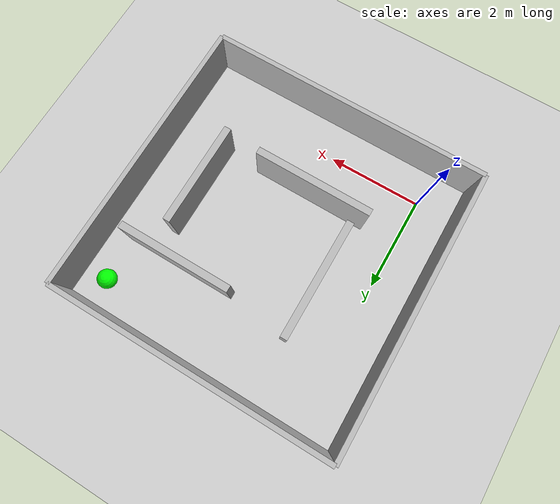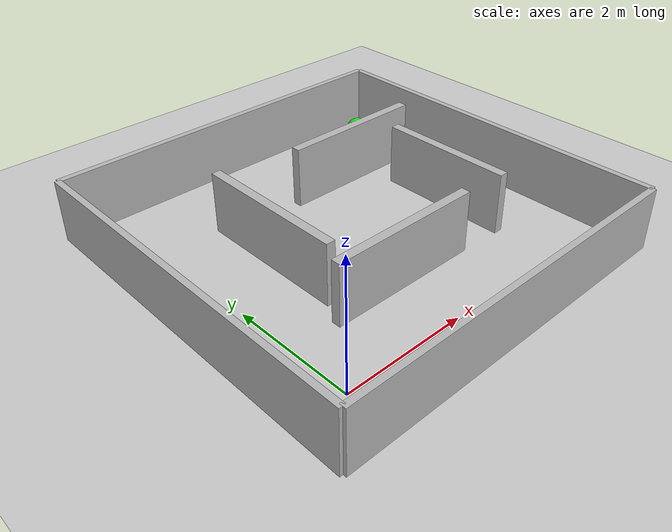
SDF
<?xml version="1.0"?>
<sdf version="1.6">
  <world name="martha_test_world_3">
    <physics name="default_physics" type="ode">
      <max_step_size>0.001</max_step_size>
      <real_time_update_rate>1000</real_time_update_rate>
      <real_time_factor>1.0</real_time_factor>
    </physics>
    <gravity>0 0 -9.81</gravity>
    <include><uri>model://sun</uri></include>
    <include><uri>model://ground_plane</uri></include>
    <plugin name="gazebo_ros_state" filename="libgazebo_ros_state.so">
      <ros><namespace>/gazebo</namespace></ros>
      <update_rate>50.0</update_rate>
    </plugin>

    <!-- Arena center: (2.2, 2.2). Martha starts near the lower-left corner. -->
    <model name="wall_left"><static>true</static><pose>2.2 5.2 0.5 0 0 0</pose><link name="link"><collision name="collision"><geometry><box><size>6 0.1 1</size></box></geometry></collision><visual name="visual"><geometry><box><size>6 0.1 1</size></box></geometry></visual></link></model>
    <model name="wall_right"><static>true</static><pose>2.2 -0.8 0.5 0 0 0</pose><link name="link"><collision name="collision"><geometry><box><size>6 0.1 1</size></box></geometry></collision><visual name="visual"><geometry><box><size>6 0.1 1</size></box></geometry></visual></link></model>
    <model name="wall_front"><static>true</static><pose>5.2 2.2 0.5 0 0 0</pose><link name="link"><collision name="collision"><geometry><box><size>0.1 6 1</size></box></geometry></collision><visual name="visual"><geometry><box><size>0.1 6 1</size></box></geometry></visual></link></model>
    <model name="wall_back"><static>true</static><pose>-0.8 2.2 0.5 0 0 0</pose><link name="link"><collision name="collision"><geometry><box><size>0.1 6 1</size></box></geometry></collision><visual name="visual"><geometry><box><size>0.1 6 1</size></box></geometry></visual></link></model>

    <model name="maze_wall_1"><static>true</static><pose>2.0 1.0 0.5 0 0 0</pose><link name="link"><collision name="collision"><geometry><box><size>2.5 0.15 1</size></box></geometry></collision><visual name="visual"><geometry><box><size>2.5 0.15 1</size></box></geometry></visual></link></model>
    <model name="maze_wall_2"><static>true</static><pose>1.0 2.6 0.5 0 0 1.570796</pose><link name="link"><collision name="collision"><geometry><box><size>2.5 0.15 1</size></box></geometry></collision><visual name="visual"><geometry><box><size>2.5 0.15 1</size></box></geometry></visual></link></model>
    <model name="maze_wall_3"><static>true</static><pose>3.5 3.6 0.5 0 0 0</pose><link name="link"><collision name="collision"><geometry><box><size>2.4 0.15 1</size></box></geometry></collision><visual name="visual"><geometry><box><size>2.4 0.15 1</size></box></geometry></visual></link></model>
    <model name="maze_wall_4"><static>true</static><pose>4.0 2.0 0.5 0 0 1.570796</pose><link name="link"><collision name="collision"><geometry><box><size>2.2 0.15 1</size></box></geometry></collision><visual name="visual"><geometry><box><size>2.2 0.15 1</size></box></geometry></visual></link></model>

    <model name="goal_point">
      <static>true</static><pose>4.6 4.6 0.2 0 0 0</pose>
      <link name="link"><visual name="visual"><geometry><sphere><radius>0.2</radius></sphere></geometry><material><ambient>0 1 0 1</ambient><diffuse>0 1 0 1</diffuse></material></visual></link>
    </model>
  </world>
</sdf>
